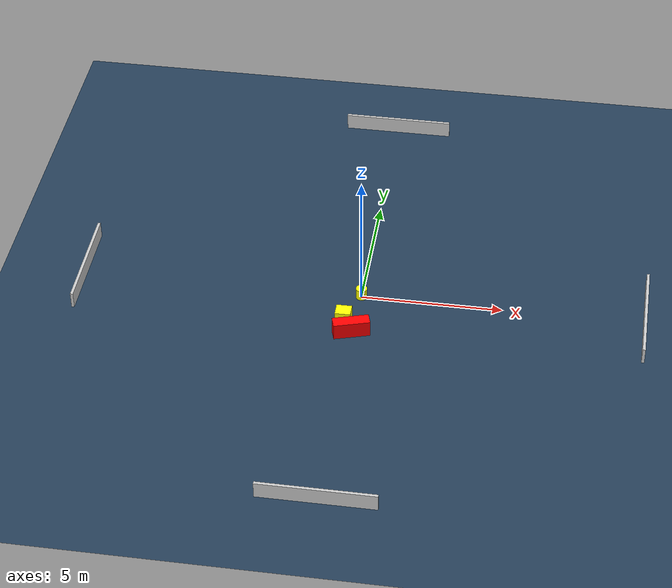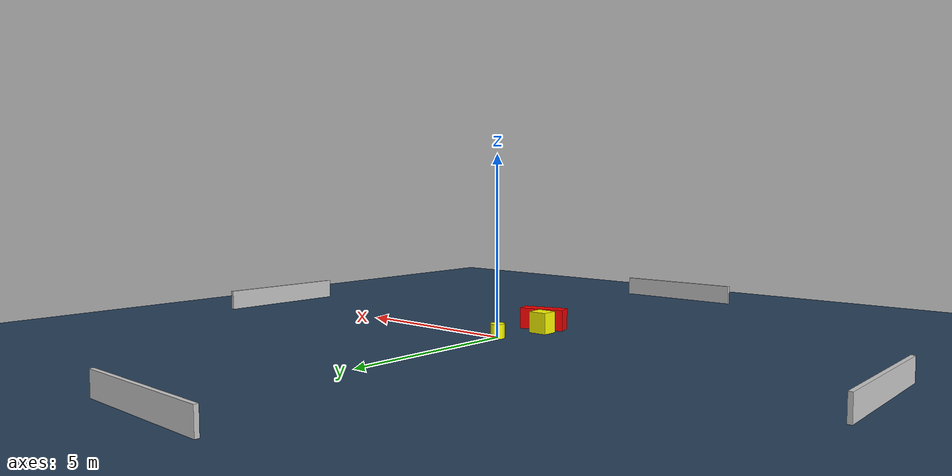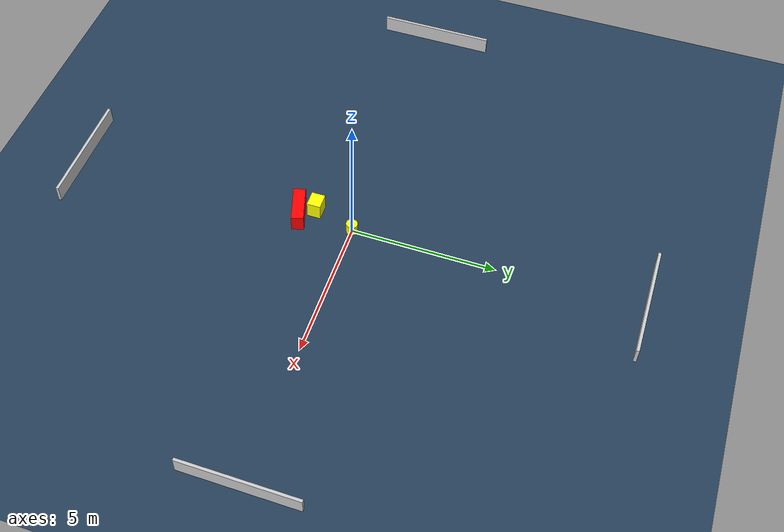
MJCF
<?xml version="1.0" ?>
<mujoco model="generated_environment">
  <option timestep="0.01" integrator="RK4" cone="elliptic"/>
  <default>
    <geom density="1"/>
  </default>
  <asset>
    <texture builtin="gradient" height="3072" name="skybox" rgb1="0.3 0.5 0.7" rgb2="0 0 0" type="skybox" width="512"/>
    <texture builtin="checker" height="300" name="groundplane" rgb1="0.2 0.3 0.4" rgb2="0.1 0.2 0.3" type="2d" width="300"/>
    <material name="groundplane" reflectance="0.2" texrepeat="5 5" texture="groundplane"/>
  </asset>
  <worldbody>
    <light dir="0 0 -1" directional="true" pos="0 0 1.5"/>
    <geom condim="3" friction="0.5 0.005 0.001" material="groundplane" name="floor" pos="0 0 0" size="0 0 0.05" type="plane"/>
    <body name="walls">
      <geom name="wall_1" condim="4" pos="-10.0 0.0 0.3" rgba="0.800000011920929 0.800000011920929 0.800000011920929 1.0" size="0.05 2.0 0.3" type="box"/>
      <geom name="wall_2" condim="4" pos="10.0 0.0 0.3" rgba="0.800000011920929 0.800000011920929 0.800000011920929 1.0" size="0.05 2.0 0.3" type="box"/>
      <geom name="wall_3" condim="4" pos="0.0 -10.0 0.3" rgba="0.800000011920929 0.800000011920929 0.800000011920929 1.0" size="2.0 0.05 0.3" type="box"/>
      <geom name="wall_4" condim="4" pos="0.0 10.0 0.3" rgba="0.800000011920929 0.800000011920929 0.800000011920929 1.0" size="2.0 0.05 0.3" type="box"/>
    </body>
    <body name="robot">
      <joint name="joint_x" type="slide" pos="0 0 0" axis="1 0 0"/>
      <joint name="joint_y" type="slide" pos="0 0 0" axis="0 1 0"/>
      <geom name="robot" type="cylinder" pos="0.0 0.0 0.2" size="0.2 0.2 0.0" mass="5.0" friction="1.0 0.005 0.0001" condim="4" rgba="1.0 1.0 0.0 1.0"/>
    </body>
    <body name="obstacle_1_movable">
      <geom name="obstacle_1_movable" condim="4" pos="-0.4292813699114779 -1.437698104839619 0.3" euler="0 0 0.3130228589949091" friction="0.0 0.005 0.001" rgba="1.0 1.0 0.0 1.0" size="0.274038451904504 0.2378005966693134 0.3" type="box" mass="0.1"/>
      <joint type="free"/>
    </body>
    <body name="obstacle_2_static">
      <geom name="obstacle_2_static" condim="4" pos="-0.08481539787602214 -1.950643761605005 0.3" euler="0 0 16.854140055166646" friction="0.0 0.005 0.001" rgba="1.0 0.0 0.0 1.0" size="0.6442224881209113 0.21280738589285977 0.3" type="box"/>
    </body>
  </worldbody>
  <actuator>
    <motor name="actuator_x" joint="joint_x" gear="1" ctrlrange="-1 1"/>
    <motor name="actuator_y" joint="joint_y" gear="1" ctrlrange="-1 1"/>
  </actuator>
</mujoco>
